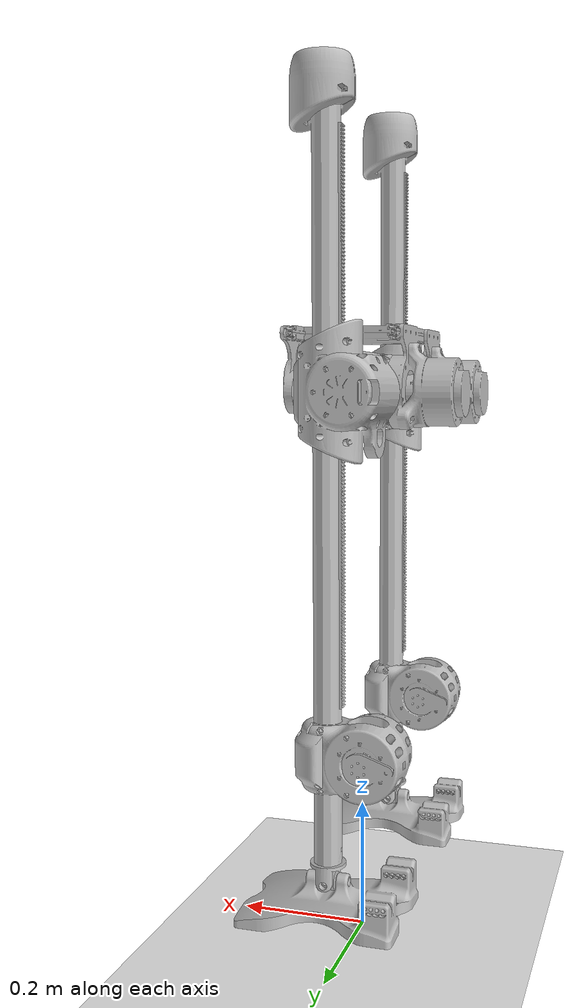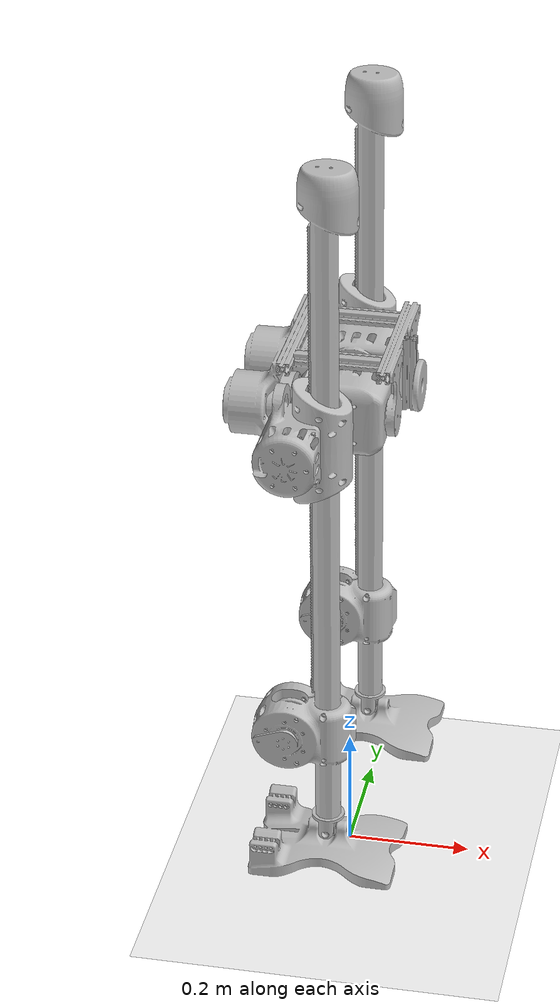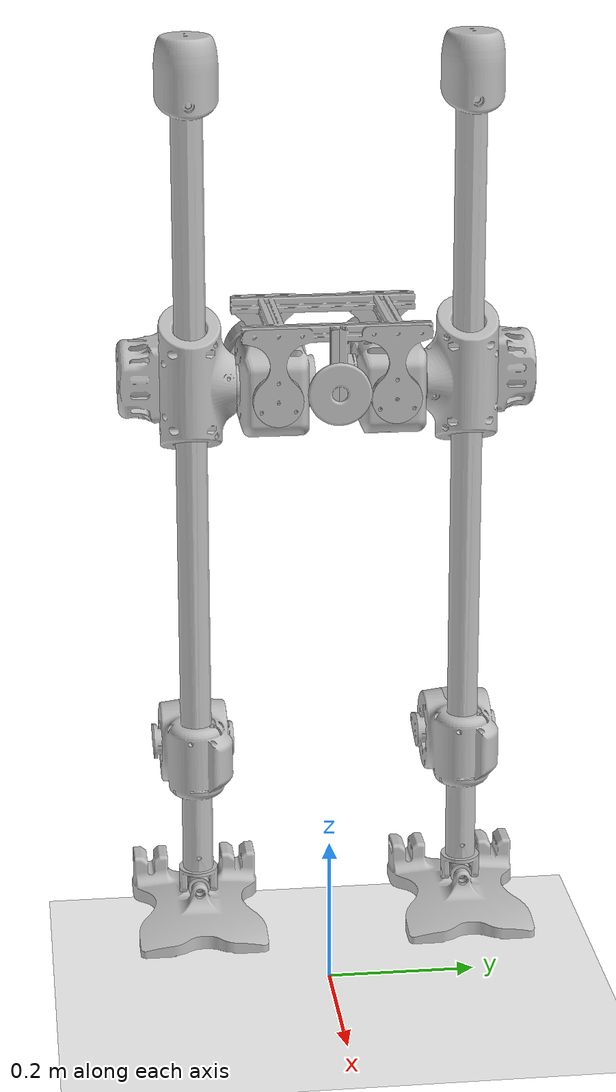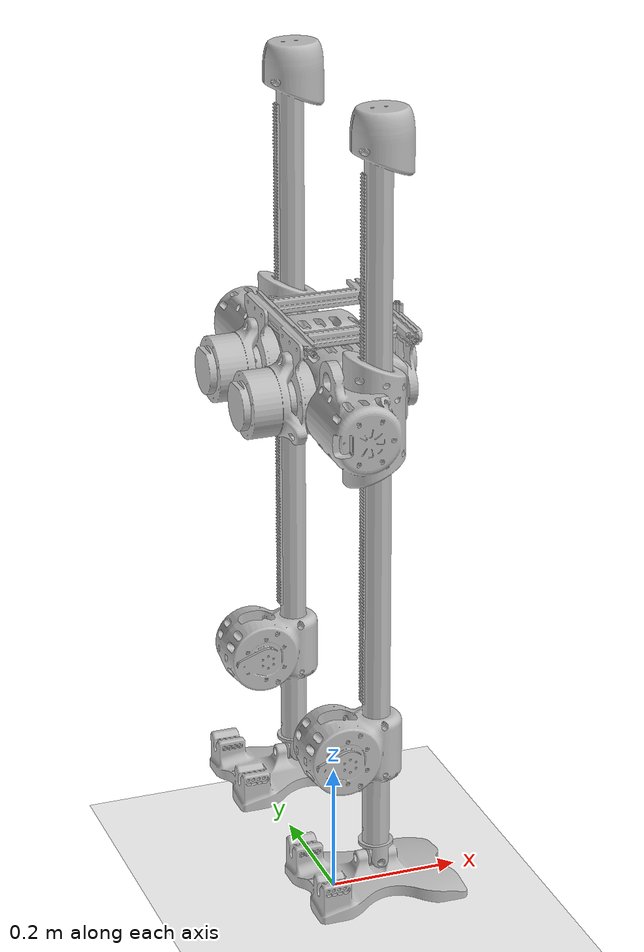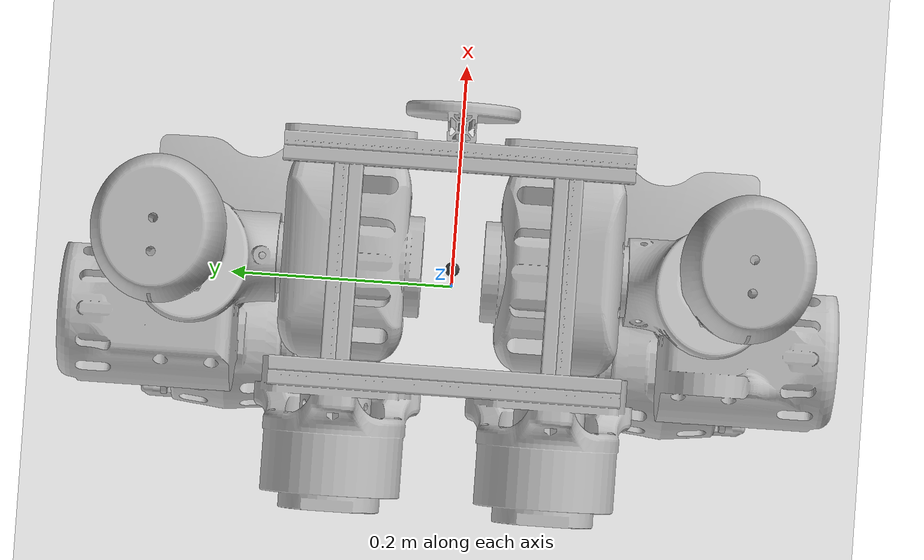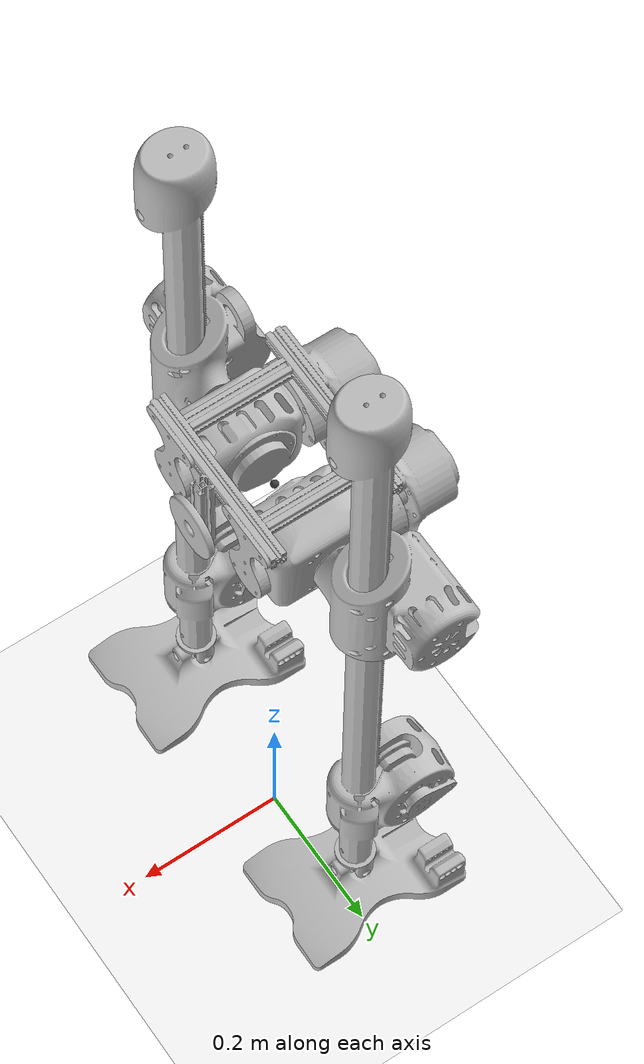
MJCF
<mujoco>
    <!-- Simulation properties -->
    <compiler texturedir="../meshes/"
        meshdir="../meshes/" balanceinertia="true"/>

    <statistic extent="1.5" meansize="0.1"/>

    <option jacobian="auto">
        <flag multiccd="enable"/>
    </option>
    <option noslip_iterations ="5"/>

    <option viscosity="0.0"/>

    <!-- Rendering properties -->
    <visual>
        <rgba haze="1.0 1.0 1.0 0.0"/>
        <quality shadowsize="4096"/>
        <map stiffness="700" shadowscale="1.0" shadowclip = "5" fogstart="10" fogend="15" zfar="100" haze="0.0"/>
        <global fovy="20"/>
    </visual>

    <!-- Assets -->
    <asset>
        <texture type="skybox" builtin="gradient" rgb1="1.0 1.0 1.0" rgb2="1.0 1.0 1.0" width="512" height="512"/>
        <texture name="texplane" type="2d" builtin="checker" rgb1=".2 .3 .4" rgb2=".1 0.15 0.2"
      width="512" height="512" mark="cross" markrgb=".8 .8 .8"/>

        <material name="matplane" reflectance="0.0" texture="texplane" texrepeat="1 1" texuniform="true" />
        <!-- texture="texplane" texrepeat="1 1" texuniform="true" -->
    </asset>

    <asset>
        <hfield name="field" file="snowdon.png" size = "10 10 0.4 1"/>
    </asset>

    <!-- Include slider urdf -->
    <include file="slider_2_0_2022_feet.xml"/>

    <!-- World description -->
    <worldbody>
        <!-- Lighting -->
        <light directional="true" diffuse=".4 .4 .4" specular="0.1 0.1 0.1" pos="3 0 5.0" dir="1 0 -1" castshadow="false"/>
        <light directional="true" diffuse=".2 .2 .2" specular="0.2 0.2 0.2" pos="3 0 4" dir="0 0 -1" castshadow="false"/>

        <!-- Flat ground plane -->

        <geom name="ground" type="plane" size="0 0 1" pos="0 0 0.0" quat="1 0 0 0" rgba = "1 1 1 1" condim="1"/>

        <!-- material="matplane" -->

    </worldbody>

</mujoco>

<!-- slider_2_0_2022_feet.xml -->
<mujoco model="slider_joint_control">
  <compiler angle="radian" meshdir="../meshes/" autolimits="true"  balanceinertia="true"/>

  <!-- Default values -->
  <default>
    <joint limited = "true" damping = "0.0" armature = "0"/>
    <position forcelimited = "true" forcerange = "-30 30" />
    <velocity forcelimited = "true" forcerange = "-30 30" />

    <default class = "hip_roll_pos">
      <position kp="200.0" ctrllimited="true" forcelimited = "true" forcerange = "-140 140" ctrlrange="-0.3 0.3"/>
    </default>

    <default class = "hip_roll_vel">
      <velocity  kv="10.0" forcelimited = "true" forcerange = "-140 140" group="1" gear = "1"/>
    </default>

    <default class = "hip_pitch_pos">
      <position kp="200.0" ctrllimited="true" forcelimited = "true" forcerange = "-65 65" ctrlrange="-0.8 0.8"/>
    </default>

    <default class = "hip_pitch_vel">
      <velocity  kv="10.0" forcelimited = "true" forcerange = "-65 65" group="1" gear = "1"/>
    </default>

    <default class = "slide_joint">
      <position kp="3000.0" ctrllimited="true" forcelimited = "true" gear="1" forcerange = "-600 600"/>
    </default>

    <default class = "slide_vel">
      <velocity kv="100.0"  forcelimited = "true" group="1" gear = "1" forcerange = "-600 600"/>
    </default>

    <default class = "foot_joint">
        <position forcelimited="true" ctrllimited="true" kp="50.0" gear = "1" forcerange="-15 15"/>
    </default>

    <default class = "foot_vel">
        <velocity forcelimited="true" kv="3.0" group="1" gear ="1" forcerange = "-15 15"/>
    </default>
  </default>

  <!-- Assets -->
  <asset>
    <mesh name="base_link" file="base_link.STL"/>
    <mesh name="Right_Pitch_Casing" file="Right_Pitch_Casing.STL"/>
    <mesh name="Right_Slide_Casing" file="Right_Slide_Casing.STL"/>
    <mesh name="Right_Leg" file="Right_Leg.STL"/>
    <mesh name="Right_Foot_Pitch_Link" file="Right_Foot_Pitch_Link.STL"/>
    <mesh name="Right_Foot" file="2022_Foot.STL"/>
    <mesh name="Left_Pitch_Casing" file="Left_Pitch_Casing.STL"/>
    <mesh name="Left_Slide_Casing" file="Left_Slide_Casing.STL"/>
    <mesh name="Left_Leg" file="Left_Leg.STL"/>
    <mesh name="Left_Foot_Pitch_Link" file="Left_Foot_Pitch_Link.STL"/>
    <mesh name="Left_Foot" file="Left_Foot.STL"/>
  </asset>

  <!-- Robot description -->
  <worldbody>
    <body name = "sensor_base">

    </body>

    <body name="base_link" pos="0 0.0 0.85">
      <freejoint/>

      <site name = "Torso"/>
      <site name = "Torso-rangefinder1" zaxis = "0 0 -1"/>
      <site name = "Torso-rangefinder2" zaxis = "0.2 0 -1"/>
      <site name = "Torso-rangefinder3" zaxis = "0.4 0 -1"/>
      <site name = "Torso-rangefinder4" zaxis = "0.6 0 -1"/>
      <site name = "Torso-rangefinder5" zaxis = "0.8 0 -1"/>

      <inertial pos="-0.075 0.0 -0.073" mass="3.791" fullinertia="0.036 0.026 0.051 -8.215e-7 -0.004 9.804e-6"/>
      <geom type="mesh" rgba="0.752941 0.752941 0.752941 1" mesh="base_link" conaffinity = "0" contype = "0"/>
      <body name="Right_Pitch_Casing" pos="0 -0.075 0">
        <inertial pos="0.003 0.003 0.0" mass="2.317" fullinertia="0.003 0.005 0.005 -9.851e-7 1.129e-7 -4.134e-6"/>
        <joint name="Right_Roll" pos="0 0 0" axis="-1 0 0" range="-1.57 0.35"/>
        <geom type="mesh" rgba="0.752941 0.752941 0.752941 1" mesh="Right_Pitch_Casing" conaffinity = "0" contype = "0"/>
        <body name="Right_Slide_Casing" pos="0 -0.1042 0">
          <inertial pos="-0.034 -0.027 0.001" mass="1.6" fullinertia="0.003 0.003 0.003 -4.546e-4 3.909e-5 -3.650e-5"/>
          <joint name="Right_Pitch" pos="0 0 0" axis="0 1 0" range="-1.57 1.57"/>
          <geom type="mesh" rgba="0.752941 0.752941 0.752941 1" mesh="Right_Slide_Casing" conaffinity = "0" contype = "0"/>
          <body name="Right_Leg" pos="0 0 -0.7">
            <inertial pos="-0.037 0.0 -0.237" mass="1.84" fullinertia="0.204 0.205 0.003 -7.479e-7 -0.01 6.440e-6"/>

            <joint name="Right_Slide" pos="0 0 0" axis="0 0 1" type="slide" range="-0.35 0.26" />
            <geom type="mesh" rgba="0.752941 0.752941 0.752941 1" mesh="Right_Leg" conaffinity = "0" contype = "0"/>
            <body name="Right_Foot_Pitch_Link" pos="0 0 0">
              <inertial pos="0.0 0.0 0.0" mass="0.039" fullinertia="4.354e-6 4.402e-6 4.148e-6 0.0 0.0 0.0"/>
              <joint name="Right_Foot_Pitch" pos="0 0 0" axis="0 1 0" range="-0.52 0.52"/>
              <geom type="mesh" rgba="0.752941 0.752941 0.752941 1" mesh="Right_Foot_Pitch_Link" conaffinity = "0" contype = "0"/>
              <body name="Right_Foot" pos="0 0 0">
                <inertial pos="-0.015 0.0 -0.029" mass="0.2" fullinertia="0.002 0.004 0.006 -1.108e-7 2.353e-4 3.204e-8"/>
                <joint name="Right_Foot_Roll" pos="0 0 0" axis="1 0 0" range="-0.52 0.52"/>
                <geom name = "Right_Foot" type="mesh" rgba="0.752941 0.752941 0.752941 1" mesh="Right_Foot" conaffinity = "0" contype = "0"/>
                <geom name = "Right_Foot_Contact" type = "box" size = "0.115 0.085 0.018" pos = "0 0 -0.031" rgba = "0.5 0.5 0.5 0.0" condim="3" friction="1 1"/>
                 <site name = "Right-Foot" size = "0.2 0.1 0.05" type = "box" rgba = "0.5 0.5 0.5 0.0"/>

              </body>
            </body>
          </body>
        </body>
      </body>
      <body name="Left_Pitch_Casing" pos="0 0.075 0">
        <inertial pos="0.003 -0.003 0.0" mass="2.317" fullinertia="0.003 0.005 0.005 -9.851e-7 1.129e-7 -4.134e-6"/>
        <joint name="Left_Roll" pos="0 0 0" axis="-1 0 0" range="-0.35 1.57"/>

        <geom type="mesh" rgba="0.752941 0.752941 0.752941 1" mesh="Left_Pitch_Casing" conaffinity = "0" contype = "0"/>
        <body name="Left_Slide_Casing" pos="0 0.1042 0">
          <inertial pos="-0.034 -0.027 0.001" mass="1.6" fullinertia="0.003 0.003 0.003 -4.546e-4 3.909e-5 -3.650e-5"/>
          <joint name="Left_Pitch" pos="0 0 0" axis="0 -1 0" range="-1.57 1.57"/>
          <geom type="mesh" rgba="0.752941 0.752941 0.752941 1" mesh="Left_Slide_Casing" conaffinity = "0" contype = "0"/>
          <body name="Left_Leg" pos="0 0 -0.7">
            <inertial pos="-0.037 0.0 -0.237" mass="1.84" fullinertia="0.204 0.205 0.003 -7.479e-7 -0.01 6.440e-6"/>

            <joint name="Left_Slide" pos="0 0 0" axis="0 0 1" type="slide" range="-0.35 0.26"  />
            <geom type="mesh" rgba="0.752941 0.752941 0.752941 1" mesh="Left_Leg" conaffinity = "0" contype = "0"/>
            <body name="Left_Foot_Pitch_Link" pos="0 0 0">
              <inertial pos="0.0 0.0 0.0" mass="0.039" fullinertia="4.354e-6 4.402e-6 4.148e-6 0.0 0.0 0.0"/>
              <joint name="Left_Foot_Pitch" pos="0 0 0" axis="0 -1 0" range="-0.52 0.52"/>
              <geom type="mesh" rgba="0.752941 0.752941 0.752941 1" mesh="Left_Foot_Pitch_Link" conaffinity = "0" contype = "0"/>
              <body name="Left_Foot" pos="0 0 0">
                <inertial pos="-0.015 0.0 -0.029" mass="0.2" fullinertia="0.002 0.004 0.006 -1.108e-7 2.353e-4 3.204e-8"/>
                <joint name="Left_Foot_Roll" pos="0 0 0" axis="1 0 0" range="-0.52 0.52"/>
                <geom name = "Left_Foot" type="mesh" rgba="0.752941 0.752941 0.752941 1" mesh="Right_Foot" conaffinity = "0" contype = "0"/>
                <geom name = "Left_Foot_Contact" type = "box" size = "0.115 0.085 0.018" mass = "0" pos = "0 0 -0.031" rgba = "0.5 0.5 0.5 0.0" condim="3" friction="1 1"/>
                <site name = "Left-Foot" size = "0.2 0.1 0.05" type = "box" rgba = "0.5 0.5 0.5 0.0"/>

              </body>
            </body>
          </body>
        </body>
      </body>
    </body>
  </worldbody>

  <contact>
    <exclude body1= "base_link" body2 = "Right_Pitch_Casing"/>
    <exclude body1= "base_link" body2 = "Right_Slide_Casing"/>
    <exclude body1= "base_link" body2 = "Right_Leg"/>
    <exclude body1= "Right_Pitch_Casing" body2 = "Right_Leg"/>
    <exclude body1= "Right_Foot" body2 = "Right_Leg"/>

    <exclude body1= "base_link" body2 = "Left_Pitch_Casing"/>
    <exclude body1= "base_link" body2 = "Left_Slide_Casing"/>
    <exclude body1= "base_link" body2 = "Left_Leg"/>
    <exclude body1= "Left_Pitch_Casing" body2 = "Left_Leg"/>
    <exclude body1= "Left_Foot" body2 = "Left_Leg"/>

    <exclude body1= "Left_Foot" body2 = "Left_Foot_Pitch_Link"/>
    <exclude body1= "Left_Leg" body2 = "Left_Foot_Pitch_Link"/>

    <exclude body1= "Right_Foot" body2 = "Right_Foot_Pitch_Link"/>
    <exclude body1= "Right_Leg" body2 = "Right_Foot_Pitch_Link"/>
  </contact>

  <!-- Actuator Description -->
  <actuator>

        <!-- Left leg control -->

        <!-- Right leg control -->

        <position name="Right_Roll" joint="Right_Roll" class="hip_roll_pos"/>
        <velocity joint="Right_Roll" class="hip_roll_vel"/>

        <position name="Right_Pitch" joint="Right_Pitch" class="hip_pitch_pos"/>
        <velocity joint="Right_Pitch" class="hip_pitch_vel"/>

        <position name="Right_Slide" joint="Right_Slide" ctrlrange="-0.1 0.3" class="slide_joint"/>
        <velocity joint="Right_Slide" class="slide_vel"/>

        <position name="Right_Foot_Roll" joint="Right_Foot_Roll" ctrlrange="-0.5 0.5" class="foot_joint"/>
        <velocity joint="Right_Foot_Roll" class = "foot_vel"/>

        <position name="Right_Foot_Pitch" joint="Right_Foot_Pitch" ctrlrange="-0.5 0.5" class="foot_joint"/>
        <velocity joint="Right_Foot_Pitch" class = "foot_vel"/>

        <position name="Left_Roll" joint="Left_Roll" class="hip_roll_pos"/>
        <velocity joint="Left_Roll" class="hip_roll_vel"/>

        <position name="Left_Pitch" joint="Left_Pitch" class="hip_pitch_pos"/>
        <velocity joint="Left_Pitch" class="hip_pitch_vel"/>

        <position name="Left_Slide" joint="Left_Slide" ctrlrange="-0.1 0.3" class="slide_joint"/>
        <velocity joint="Left_Slide" class="slide_vel"/>

        <position name="Left_Foot_Roll" joint="Left_Foot_Roll" ctrlrange="-0.5 0.5" class="foot_joint"/>
        <velocity joint="Left_Foot_Roll" class = "foot_vel"/>

        <position name="Left_Foot_Pitch" joint="Left_Foot_Pitch" ctrlrange="-0.5 0.5" class="foot_joint"/>
        <velocity joint="Left_Foot_Pitch" class = "foot_vel"/>
    </actuator>

    <!-- Sensors -->
    <sensor>
        <velocimeter name = "right-foot-vel" site = "Right-Foot"/>
        <velocimeter name = "left-foot-vel" site = "Left-Foot"/>

        <velocimeter name = "body-vel" site = "Torso"/>
        <gyro name = "body-gyro" site = "Torso"/>
        <accelerometer name = "body-accel" site = "Torso"/>

        <touch name = "left-foot-touch" site = "Left-Foot"/>
        <touch name = "right-foot-touch" site = "Right-Foot"/>

    </sensor>

</mujoco>
